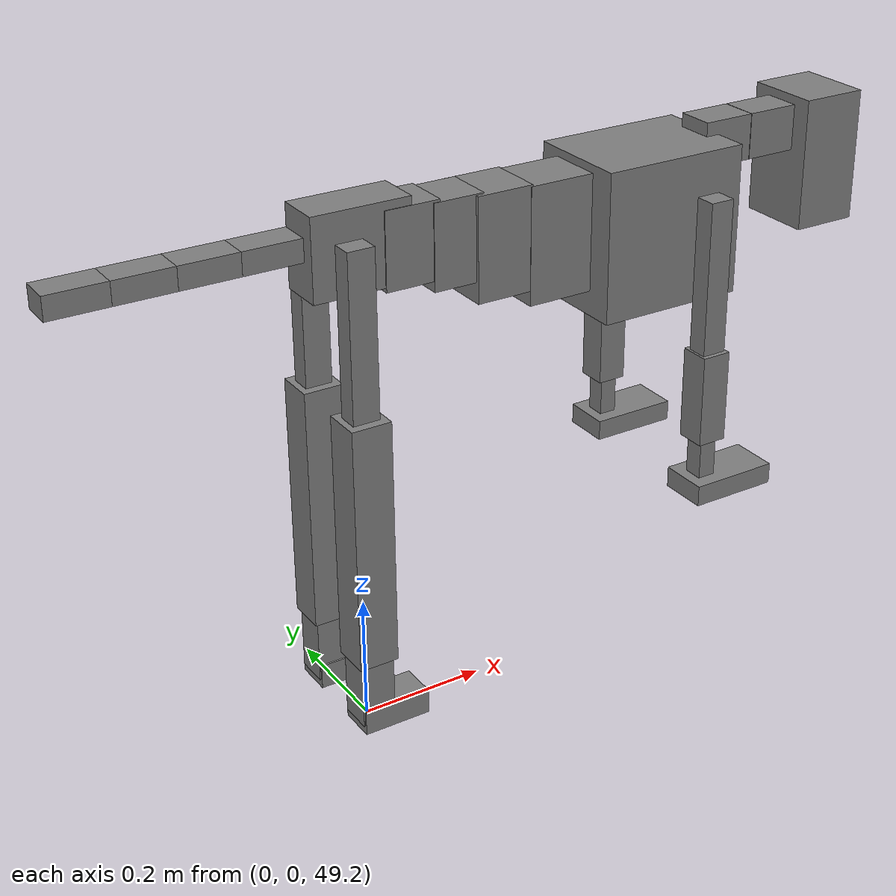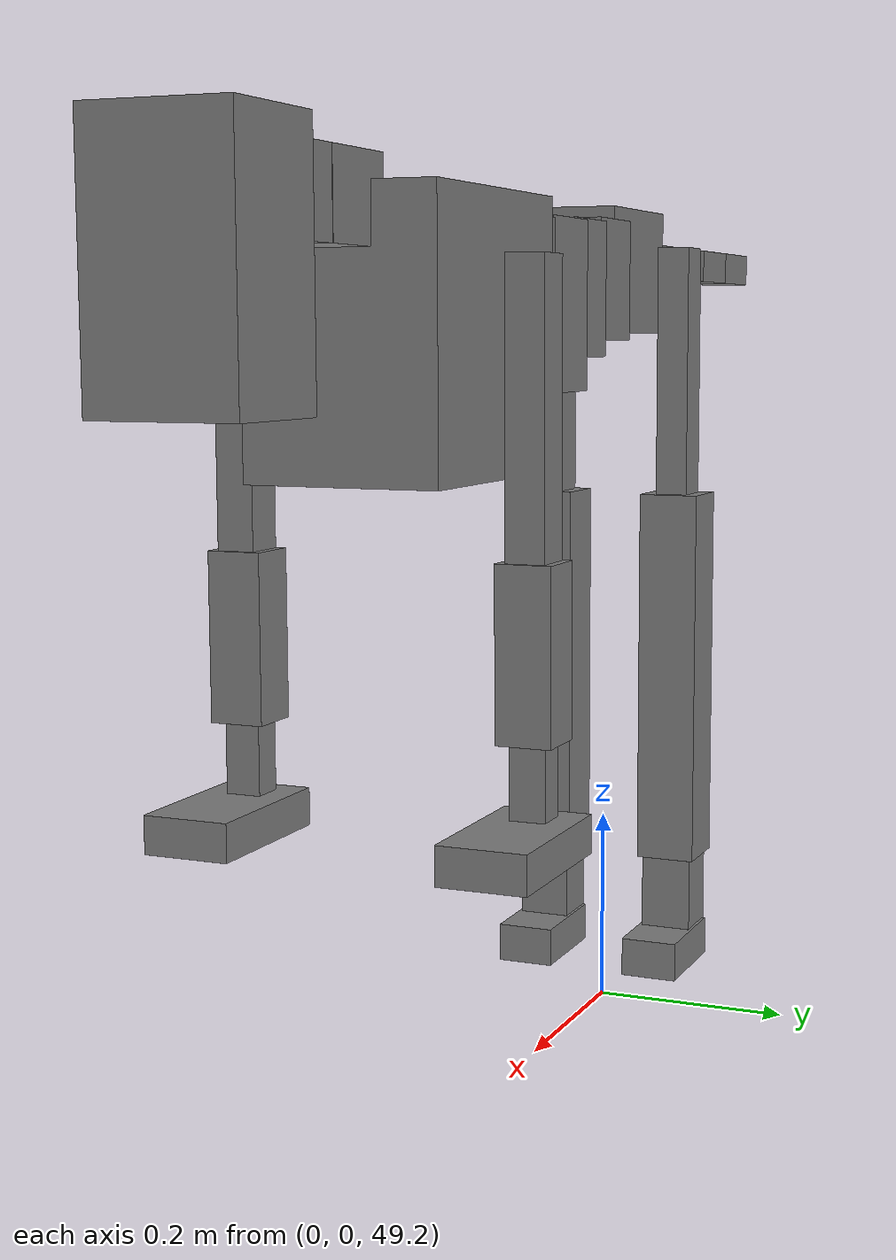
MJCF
<mujoco model="dog">

    <default>
        <joint armature="0.02" stiffness="1" damping="0.2" limited="true"/>
        <geom condim="3" friction="1 0.05 0.05" margin="0.01"/>
        <motor ctrllimited="true" ctrlrange="-1.0 1.0" forcelimited="true" gear="50"/>
    </default>

    <compiler inertiafromgeom="true" angle="radian"/>

    <option timestep="0.016" iterations="50" tolerance="1e-10" solver="Newton" jacobian="dense" cone="pyramidal"/>

    <size nconmax="20000" njmax="60000" nstack="5000000"/>
    <visual>
        <map force="0.1" zfar="30"/>
        <rgba haze="0.15 0.25 0.35 1"/>
        <quality shadowsize="2048"/>
        <global offwidth="800" offheight="800"/>
    </visual>

    <asset>
        <texture type="skybox" builtin="gradient" rgb1="0.3 0.5 0.7" rgb2="0 0 0" width="512" height="512"/>
        <texture name="texplane" type="2d" builtin="checker" rgb1=".2 .3 .4" rgb2=".1 0.15 0.2" width="512" height="512"
                 mark="cross" markrgb=".8 .8 .8"/>
        <texture name="texgeom" type="cube" builtin="flat" mark="cross" width="127" height="1278" rgb1="0.8 0.6 0.4"
                 rgb2="0.8 0.6 0.4" markrgb="1 1 1" random="0.01"/>

        <material name="matplane" reflectance="0.3" texture="texplane" texrepeat="1 1" texuniform="true"/>
        <material name="matgeom" texture="texgeom" texuniform="true" rgba="0.8 0.6 .4 1"/>
    </asset>

    <worldbody>
        <geom name="floor" pos="0 0 0" size="0 0 .25" type="plane" material="matplane" condim="3"/>

        <light directional="false" diffuse=".2 .2 .2" specular="0 0 0" pos="0 0 5" dir="0 0 -1" castshadow="false"/>
        <light mode="targetbodycom" target="torso" directional="false" diffuse=".8 .8 .8" specular="0.3 0.3 0.3"
               pos="0 0 4.0" dir="0 0 -1"/>

        <body name="root" pos="0 0 50">
            <freejoint name="root_1"/>
            <geom type="box" pos="0 0 -0.02" size="0.0774  0.0358  0.063" density="2030"/>

            <body name="spine1" pos="0.054 0 0">
                <joint name="spine1_y" axis="0 1 0" range="0 0.7" limited="true"/>
                <geom type="box" pos="0.02375 0 -0.03" size="0.04375  0.0375  0.05985" density="2030"/>

                <body name="spine2" pos="0.0612 0 0">
                    <joint name="spine2_y" axis="0 1 0" range="-0.15 0.15" limited="true"/>
                    <geom type="box" pos="0.03555  0  -0.04" size="0.04055  0.039  0.06615" density="2030"/>

                    <body name="spine3" pos="0.0730 0 0">
                        <joint name="spine3_y" axis="0 1 0" range="-0.15 0.15" limited="true"/>
                        <geom type="box" pos="0.03555  0  -0.057" size="0.04555  0.0445  0.081" density="2030"/>

                        <body name="spine4" pos="0.0780 0 0">
                            <joint name="spine4_y" axis="0 1 0" range="-0.15 0.15" limited="true"/>
                            <geom type="box" pos="0.05265  0  -0.07" size="0.05265  0.045  0.09135" density="2030"/>

                            <body name="torso" pos="0.1082 0 0">
                                <joint name="torso_y" axis="0 1 0" range="-0.15 0.15" limited="true"/>
                                <geom type="box" pos="0.11925  0  -0.085" size="0.11925  0.085  0.11745"
                                      density="2030"/>

                                <body name="neck1" pos="0.2160  0   0.0180">
                                    <joint name="neck1_y" axis="0 1 0" range="-1.2  -1" limited="true"/>
                                    <geom type="box" pos="0.0423  0  0" size="0.0423  0.03  0.036" density="2325"/>

                                    <body name="neck2" pos="0.0853  0  0">
                                        <joint name="neck2_y" axis="0 1 0" range="0.1  0" limited="true"/>
                                        <geom type="box" pos="0.0423  0  0" size="0.0423  0.03  0.036" density="2325"/>

                                        <body name="head" pos="0.0853  0  0">
                                            <joint name="head_y" axis="0 1 0" range="-0.3  -0.2" limited="true"/>
                                            <geom type="box" pos="0.0531  0  -0.055" size="0.0531  0.06  0.1044"
                                                  density="4030"/>

                                        </body>
                                    </body>
                                </body>

                                <body name="front_shoulder" pos="0.156  0   -0.0480">
                                    <joint name="front_shoulder_y" axis="0 1 0" range="-1 1.5" limited="true"/>
                                    <geom type="box" pos="0 0.13 -0.1078" size="0.0194  0.0166  0.1345" density="1158"/>
                                    <geom type="box" pos="0 -0.13 -0.1078" size="0.0194  0.0166  0.1345"
                                          density="1158"/>

                                    <body name="front_elbow" pos="0  0  -0.2156">
                                        <joint name="front_elbow_y" axis="0 1 0" range="-2 0" limited="true"/>
                                        <geom type="box" pos="0 0.13 -0.0732" size="0.0235  0.0240  0.0732"
                                              density="1081"/>
                                        <geom type="box" pos="0 -0.13 -0.0732" size="0.0235  0.0240  0.0732"
                                              density="1081"/>

                                        <body name="front_wrist" pos="0  0  -0.1463">
                                            <joint name="front_wrist_y" axis="0 1 0" range="-0.2 0" limited="true"/>
                                            <geom type="box" pos="0 0.13 -0.0388" size="0.0141  0.0157  0.0519"
                                                  density="1664"/>
                                            <geom type="box" pos="0 -0.13 -0.0388" size="0.0141  0.0157  0.0519"
                                                  density="1664"/>

                                            <body name="front_finger_end" pos="0  0  -0.0776">
                                                <joint name="front_finger_y" axis="0 1 0" range="-0.4 1"
                                                       limited="true"/>
                                                <geom type="box" pos="0.0384  0.13  -0.0015"
                                                      size="0.0704  0.0384  0.0165" density="1515"/>
                                                <geom type="box" pos="0.0384  -0.13  -0.0015"
                                                      size="0.0704  0.0384  0.0165" density="1515"/>

                                            </body>

                                        </body>
                                    </body>
                                </body>

                            </body>
                        </body>
                    </body>
                </body>
            </body>

            <body name="back_hip" pos="-0.03 0 -0.018">
                <joint name="back_hip_y" axis="0 1 0" range="-1.5 0.3" limited="true"/>
                <geom type="box" pos="0 0.07 -0.1244" size="0.0210  0.0165  0.1472" density="1154"/>
                <geom type="box" pos="0 -0.07 -0.1244" size="0.0210  0.0165  0.1472" density="1154"/>

                <body name="back_knee" pos="0  0  -0.2487">
                    <joint name="back_knee_y" axis="0 1 0" range="0 2.8" limited="true"/>
                    <geom type="box" pos="0 0.07 -0.1801" size="0.0313  0.0308  0.1957" density="1227"/>
                    <geom type="box" pos="0 -0.07 -0.1801" size="0.0313  0.0308  0.1957" density="1227"/>

                    <body name="back_ankle" pos="0  0  -0.3603">
                        <joint name="back_ankle_y" axis="0 1 0" range="-2.2 0" limited="true"/>
                        <geom type="box" pos="0 0.07 -0.0536" size="0.0263  0.0263  0.0648" density="1284"/>
                        <geom type="box" pos="0 -0.07 -0.0536" size="0.0263  0.0263  0.0648" density="1284"/>

                        <body name="back_toe_end" pos="0  0  -0.1071">
                            <joint name="back_toe_y" axis="0 1 0" range="-0.4 1" limited="true"/>
                            <geom type="box" pos="0.0293  0.07  -0.0048" size="0.0537  0.0293  0.0198" density="1515"/>
                            <geom type="box" pos="0.0293  -0.07  -0.0048" size="0.0537  0.0293  0.0198" density="1515"/>

                        </body>
                    </body>
                </body>
            </body>

            <body name="tail1" pos="-0.074 0 -0.006">
                <joint name="tail1_y" axis="0 1 0" range="-0.2 0.2" limited="true"/>
                <geom type="box" pos="-0.0536  0  0" size="0.045  0.025  0.0175" density="1587"/>

                <body name="tail2" pos="-0.09 0 0">
                    <joint name="tail2_y" axis="0 1 0" range="-0.2 0.2" limited="true"/>
                    <geom type="box" pos="-0.0536  0  0" size="0.045  0.025  0.0175" density="1587"/>

                    <body name="tail3" pos="-0.09 0 0">
                        <joint name="tail3_y" axis="0 1 0" range="-0.2 0.2" limited="true"/>
                        <geom type="box" pos="-0.0536  0  0" size="0.045  0.025  0.0175" density="1587"/>

                        <body name="tail4" pos="-0.09 0 0">
                            <joint name="tail4_y" axis="0 1 0" range="-0.2 0.2" limited="true"/>
                            <geom type="box" pos="-0.0536  0  0" size="0.045  0.025  0.0175" density="1587"/>

                        </body>
                    </body>
                </body>
            </body>
        </body>
    </worldbody>

    <actuator>
        <motor joint="spine1_y" forcerange="-150 150     "/>
        <motor joint="spine2_y" forcerange="-150 150     "/>
        <motor joint="spine3_y" forcerange="-150 150     "/>
        <motor joint="spine4_y" forcerange="-150 150     "/>
        <motor joint="torso_y" forcerange="-150 150     "/>
        <motor joint="neck1_y" forcerange="-100 100       "/>
        <motor joint="neck2_y" forcerange="-100 100       "/>
        <motor joint="head_y" forcerange="-150 150       "/>
        <motor joint="front_shoulder_y" forcerange="-110.42 100.40"/>
        <motor joint="front_elbow_y" forcerange="-138.44 135.99"/>
        <motor joint="front_wrist_y" forcerange="-58.46 66.84"/>
        <motor joint="front_finger_y" forcerange="-80.32 84.59"/>
        <motor joint="back_hip_y" forcerange="-203.42 216.46"/>
        <motor joint="back_knee_y" forcerange="-254.61 393.82"/>
        <motor joint="back_angle_y" forcerange="-77.23 244.07"/>
        <motor joint="back_toe_y" forcerange="-58.67 95.79"/>
        <motor joint="tail1_y" forcerange="-50 50     "/>
        <motor joint="tail2_y" forcerange="-50 50     "/>
        <motor joint="tail3_y" forcerange="-50 50     "/>
        <motor joint="tail4_y" forcerange="-50 50     "/>
    </actuator>
</mujoco>
